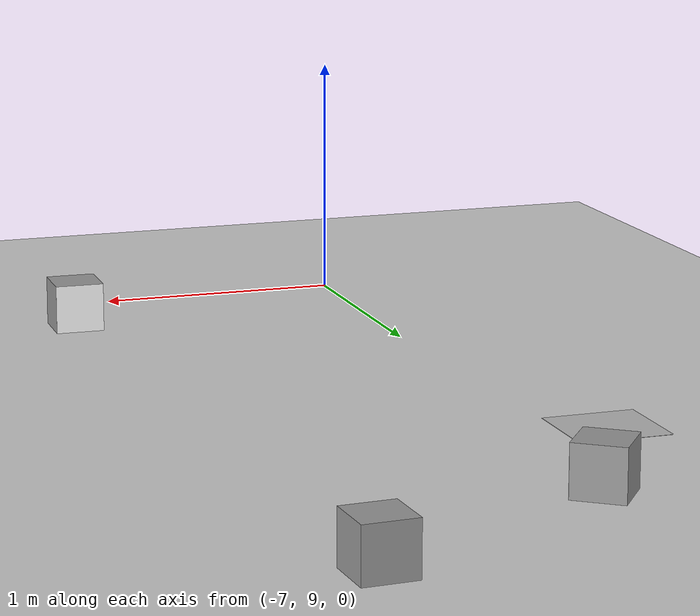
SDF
<sdf version="1.7">
 <world name="default">
  <model name="ground_plane">
   <static>1</static>
   <link name="link">
    <collision name="collision">
     <geometry><plane><normal>0 0 1</normal><size>100 100</size></plane></geometry>
     <surface>
      <contact><collide_bitmask>65535</collide_bitmask></contact>
      <friction><ode><mu>100</mu><mu2>50</mu2></ode></friction>
     </surface>
    </collision>
    <visual name="visual">
     <cast_shadows>0</cast_shadows>
     <geometry><plane><normal>0 0 1</normal><size>100 100</size></plane></geometry>
     <material>
      <script><uri>file://media/materials/scripts/gazebo.material</uri><name>Gazebo/Grey</name></script>
     </material>
    </visual>
   </link>
  </model>
  <model name="marker12_box">
   <link name="marker">
    <inertial>
     <mass>0.1</mass>
     <inertia><ixx>0</ixx><ixy>0</ixy><ixz>0</ixz><iyy>0</iyy><iyz>0</iyz><izz>0</izz></inertia>
    </inertial>
    <self_collide>1</self_collide>
    <pose>-0.76428 -0.101106 0.120004 -0.015494 1.56996 -0.015507</pose>
    <visual name="visual">
     <geometry><box><size>0.2 0.2 0.001</size></box></geometry>
     <material>
      <script>
       <uri>model://marker12/material/scripts</uri>
       <uri>model://marker12/material/textures</uri>
       <name>Aruco/marker12</name>
      </script>
      <shader type="pixel"><normal_map>__default__</normal_map></shader>
      <emissive>0 0 0 1</emissive>
      <ambient>1 1 1 1</ambient>
      <diffuse>1 1 1 1</diffuse>
      <specular>0 0 0 1</specular>
     </material>
    </visual>
    <collision name="collision">
     <geometry><box><size>0.2 0.2 0.02</size></box></geometry>
     <surface>
      <friction>
       <ode><mu>1</mu><mu2>1</mu2><fdir1>0 0 0</fdir1><slip1>0</slip1><slip2>0</slip2></ode>
       <torsional>
        <coefficient>1</coefficient>
        <patch_radius>0</patch_radius>
        <surface_radius>0</surface_radius>
        <use_patch_radius>1</use_patch_radius>
        <ode><slip>0</slip></ode>
       </torsional>
      </friction>
      <bounce><restitution_coefficient>0</restitution_coefficient><threshold>1e+06</threshold></bounce>
      <contact>
       <collide_without_contact>0</collide_without_contact>
       <collide_without_contact_bitmask>1</collide_without_contact_bitmask>
       <collide_bitmask>1</collide_bitmask>
       <ode>
        <soft_cfm>0</soft_cfm>
        <soft_erp>0.2</soft_erp>
        <kp>1e+13</kp>
        <kd>1</kd>
        <max_vel>0.01</max_vel>
        <min_depth>0</min_depth>
       </ode>
       <bullet>
        <split_impulse>1</split_impulse>
        <split_impulse_penetration_threshold>-0.01</split_impulse_penetration_threshold>
        <soft_cfm>0</soft_cfm>
        <soft_erp>0.2</soft_erp>
        <kp>1e+13</kp>
        <kd>1</kd>
       </bullet>
      </contact>
     </surface>
    </collision>
   </link>
   <link name="link_1">
    <inertial>
     <mass>1</mass>
     <inertia>
      <ixx>0.166667</ixx>
      <ixy>0</ixy>
      <ixz>0</ixz>
      <iyy>0.166667</iyy>
      <iyz>0</iyz>
      <izz>0.166667</izz>
     </inertia>
    </inertial>
    <pose>-0.86428 -0.101106 0.12 -1.3e-05 -4.2e-05 0</pose>
    <visual name="visual">
     <geometry><box><size>0.2 0.2 0.2</size></box></geometry>
     <material>
      <lighting>1</lighting>
      <script><uri>file://media/materials/scripts/gazebo.material</uri><name>Gazebo/Grey</name></script>
      <shader type="pixel"><normal_map>__default__</normal_map></shader>
      <emissive>0 0 0 1</emissive>
      <ambient>0.3 0.3 0.3 1</ambient>
      <diffuse>0.7 0.7 0.7 1</diffuse>
      <specular>0.01 0.01 0.01 1</specular>
     </material>
    </visual>
    <collision name="collision">
     <geometry><box><size>0.2 0.2 0.2</size></box></geometry>
     <surface>
      <friction>
       <ode><mu>1</mu><mu2>1</mu2><fdir1>0 0 0</fdir1><slip1>0</slip1><slip2>0</slip2></ode>
       <torsional>
        <coefficient>1</coefficient>
        <patch_radius>0</patch_radius>
        <surface_radius>0</surface_radius>
        <use_patch_radius>1</use_patch_radius>
        <ode><slip>0</slip></ode>
       </torsional>
      </friction>
      <bounce><restitution_coefficient>0</restitution_coefficient><threshold>1e+06</threshold></bounce>
      <contact>
       <collide_without_contact>0</collide_without_contact>
       <collide_without_contact_bitmask>1</collide_without_contact_bitmask>
       <collide_bitmask>1</collide_bitmask>
       <ode>
        <soft_cfm>0</soft_cfm>
        <soft_erp>0.2</soft_erp>
        <kp>1e+13</kp>
        <kd>1</kd>
        <max_vel>0.01</max_vel>
        <min_depth>0</min_depth>
       </ode>
       <bullet>
        <split_impulse>1</split_impulse>
        <split_impulse_penetration_threshold>-0.01</split_impulse_penetration_threshold>
        <soft_cfm>0</soft_cfm>
        <soft_erp>0.2</soft_erp>
        <kp>1e+13</kp>
        <kd>1</kd>
       </bullet>
      </contact>
     </surface>
    </collision>
   </link>
   <joint name="link_1_JOINT_3" type="fixed">
    <parent>link_1</parent>
    <child>marker</child>
    <physics>
     <ode><limit><cfm>0</cfm><erp>0.2</erp></limit><suspension><cfm>0</cfm><erp>0.2</erp></suspension></ode>
    </physics>
   </joint>
   <static>0</static>
   <pose>-5.78875 11.9035 -0.020006 2e-05 1.8e-05 -1.52432</pose>
  </model>
  <model name="marker14">
   <static>0</static>
   <link name="marker">
    <inertial>
     <mass>0.1</mass>
     <inertia><ixx>0</ixx><ixy>0</ixy><ixz>0</ixz><iyy>0</iyy><iyz>0</iyz><izz>0</izz></inertia>
    </inertial>
    <visual name="visual">
     <geometry><box><size>0.368647 0.350422 0.001</size></box></geometry>
     <material>
      <script>
       <uri>model://marker14/material/scripts</uri>
       <uri>model://marker14/material/textures</uri>
       <name>Aruco/marker14</name>
      </script>
     </material>
    </visual>
    <collision name="collision"><geometry><box><size>0.368647 0.350422 0.02</size></box></geometry></collision>
    <self_collide>1</self_collide>
   </link>
   <pose>-7.24908 11.5235 0.010001 -1e-06 4e-06 0</pose>
  </model>
  <model name="marker16_box">
   <link name="marker">
    <inertial>
     <mass>0.1</mass>
     <inertia><ixx>0</ixx><ixy>0</ixy><ixz>0</ixz><iyy>0</iyy><iyz>0</iyz><izz>0</izz></inertia>
    </inertial>
    <self_collide>1</self_collide>
    <pose>-0.76428 -0.101106 0.120004 -0.015494 1.56996 -0.015507</pose>
    <visual name="visual">
     <geometry><box><size>0.2 0.2 0.001</size></box></geometry>
     <material>
      <script>
       <uri>model://marker16/material/scripts</uri>
       <uri>model://marker16/material/textures</uri>
       <name>Aruco/marker16</name>
      </script>
      <shader type="pixel"><normal_map>__default__</normal_map></shader>
      <emissive>0 0 0 1</emissive>
      <ambient>1 1 1 1</ambient>
      <diffuse>1 1 1 1</diffuse>
      <specular>0 0 0 1</specular>
     </material>
    </visual>
    <collision name="collision">
     <geometry><box><size>0.2 0.2 0.02</size></box></geometry>
     <surface>
      <friction>
       <ode><mu>1</mu><mu2>1</mu2><fdir1>0 0 0</fdir1><slip1>0</slip1><slip2>0</slip2></ode>
       <torsional>
        <coefficient>1</coefficient>
        <patch_radius>0</patch_radius>
        <surface_radius>0</surface_radius>
        <use_patch_radius>1</use_patch_radius>
        <ode><slip>0</slip></ode>
       </torsional>
      </friction>
      <bounce><restitution_coefficient>0</restitution_coefficient><threshold>1e+06</threshold></bounce>
      <contact>
       <collide_without_contact>0</collide_without_contact>
       <collide_without_contact_bitmask>1</collide_without_contact_bitmask>
       <collide_bitmask>1</collide_bitmask>
       <ode>
        <soft_cfm>0</soft_cfm>
        <soft_erp>0.2</soft_erp>
        <kp>1e+13</kp>
        <kd>1</kd>
        <max_vel>0.01</max_vel>
        <min_depth>0</min_depth>
       </ode>
       <bullet>
        <split_impulse>1</split_impulse>
        <split_impulse_penetration_threshold>-0.01</split_impulse_penetration_threshold>
        <soft_cfm>0</soft_cfm>
        <soft_erp>0.2</soft_erp>
        <kp>1e+13</kp>
        <kd>1</kd>
       </bullet>
      </contact>
     </surface>
    </collision>
   </link>
   <link name="link_1">
    <inertial>
     <mass>1</mass>
     <inertia>
      <ixx>0.166667</ixx>
      <ixy>0</ixy>
      <ixz>0</ixz>
      <iyy>0.166667</iyy>
      <iyz>0</iyz>
      <izz>0.166667</izz>
     </inertia>
    </inertial>
    <pose>-0.86428 -0.101106 0.12 -1.3e-05 -4.2e-05 0</pose>
    <visual name="visual">
     <geometry><box><size>0.2 0.2 0.2</size></box></geometry>
     <material>
      <lighting>1</lighting>
      <script><uri>file://media/materials/scripts/gazebo.material</uri><name>Gazebo/Grey</name></script>
      <shader type="pixel"><normal_map>__default__</normal_map></shader>
      <emissive>0 0 0 1</emissive>
      <ambient>0.3 0.3 0.3 1</ambient>
      <diffuse>0.7 0.7 0.7 1</diffuse>
      <specular>0.01 0.01 0.01 1</specular>
     </material>
    </visual>
    <collision name="collision">
     <geometry><box><size>0.2 0.2 0.2</size></box></geometry>
     <surface>
      <friction>
       <ode><mu>1</mu><mu2>1</mu2><fdir1>0 0 0</fdir1><slip1>0</slip1><slip2>0</slip2></ode>
       <torsional>
        <coefficient>1</coefficient>
        <patch_radius>0</patch_radius>
        <surface_radius>0</surface_radius>
        <use_patch_radius>1</use_patch_radius>
        <ode><slip>0</slip></ode>
       </torsional>
      </friction>
      <bounce><restitution_coefficient>0</restitution_coefficient><threshold>1e+06</threshold></bounce>
      <contact>
       <collide_without_contact>0</collide_without_contact>
       <collide_without_contact_bitmask>1</collide_without_contact_bitmask>
       <collide_bitmask>1</collide_bitmask>
       <ode>
        <soft_cfm>0</soft_cfm>
        <soft_erp>0.2</soft_erp>
        <kp>1e+13</kp>
        <kd>1</kd>
        <max_vel>0.01</max_vel>
        <min_depth>0</min_depth>
       </ode>
       <bullet>
        <split_impulse>1</split_impulse>
        <split_impulse_penetration_threshold>-0.01</split_impulse_penetration_threshold>
        <soft_cfm>0</soft_cfm>
        <soft_erp>0.2</soft_erp>
        <kp>1e+13</kp>
        <kd>1</kd>
       </bullet>
      </contact>
     </surface>
    </collision>
   </link>
   <joint name="link_1_JOINT_3" type="fixed">
    <parent>link_1</parent>
    <child>marker</child>
    <physics>
     <ode><limit><cfm>0</cfm><erp>0.2</erp></limit><suspension><cfm>0</cfm><erp>0.2</erp></suspension></ode>
    </physics>
   </joint>
   <static>0</static>
   <pose>-5.84371 10.2589 -0.020008 1.5e-05 1.8e-05 1.54858</pose>
  </model>
  <model name="marker17_box">
   <link name="marker">
    <inertial>
     <mass>0.1</mass>
     <inertia><ixx>0</ixx><ixy>0</ixy><ixz>0</ixz><iyy>0</iyy><iyz>0</iyz><izz>0</izz></inertia>
    </inertial>
    <self_collide>1</self_collide>
    <pose>-0.76428 -0.101106 0.120004 -0.015494 1.56996 -0.015507</pose>
    <visual name="visual">
     <geometry><box><size>0.2 0.2 0.001</size></box></geometry>
     <material>
      <script>
       <uri>model://marker17/material/scripts</uri>
       <uri>model://marker17/material/textures</uri>
       <name>Aruco/marker17</name>
      </script>
      <shader type="pixel"><normal_map>__default__</normal_map></shader>
      <emissive>0 0 0 1</emissive>
      <ambient>1 1 1 1</ambient>
      <diffuse>1 1 1 1</diffuse>
      <specular>0 0 0 1</specular>
     </material>
    </visual>
    <collision name="collision">
     <geometry><box><size>0.2 0.2 0.02</size></box></geometry>
     <surface>
      <friction>
       <ode><mu>1</mu><mu2>1</mu2><fdir1>0 0 0</fdir1><slip1>0</slip1><slip2>0</slip2></ode>
       <torsional>
        <coefficient>1</coefficient>
        <patch_radius>0</patch_radius>
        <surface_radius>0</surface_radius>
        <use_patch_radius>1</use_patch_radius>
        <ode><slip>0</slip></ode>
       </torsional>
      </friction>
      <bounce><restitution_coefficient>0</restitution_coefficient><threshold>1e+06</threshold></bounce>
      <contact>
       <collide_without_contact>0</collide_without_contact>
       <collide_without_contact_bitmask>1</collide_without_contact_bitmask>
       <collide_bitmask>1</collide_bitmask>
       <ode>
        <soft_cfm>0</soft_cfm>
        <soft_erp>0.2</soft_erp>
        <kp>1e+13</kp>
        <kd>1</kd>
        <max_vel>0.01</max_vel>
        <min_depth>0</min_depth>
       </ode>
       <bullet>
        <split_impulse>1</split_impulse>
        <split_impulse_penetration_threshold>-0.01</split_impulse_penetration_threshold>
        <soft_cfm>0</soft_cfm>
        <soft_erp>0.2</soft_erp>
        <kp>1e+13</kp>
        <kd>1</kd>
       </bullet>
      </contact>
     </surface>
    </collision>
   </link>
   <link name="link_1">
    <inertial>
     <mass>1</mass>
     <inertia>
      <ixx>0.166667</ixx>
      <ixy>0</ixy>
      <ixz>0</ixz>
      <iyy>0.166667</iyy>
      <iyz>0</iyz>
      <izz>0.166667</izz>
     </inertia>
    </inertial>
    <pose>-0.86428 -0.101106 0.12 -1.3e-05 -4.2e-05 0</pose>
    <visual name="visual">
     <geometry><box><size>0.2 0.2 0.2</size></box></geometry>
     <material>
      <lighting>1</lighting>
      <script><uri>file://media/materials/scripts/gazebo.material</uri><name>Gazebo/Grey</name></script>
      <shader type="pixel"><normal_map>__default__</normal_map></shader>
      <emissive>0 0 0 1</emissive>
      <ambient>0.3 0.3 0.3 1</ambient>
      <diffuse>0.7 0.7 0.7 1</diffuse>
      <specular>0.01 0.01 0.01 1</specular>
     </material>
    </visual>
    <collision name="collision">
     <geometry><box><size>0.2 0.2 0.2</size></box></geometry>
     <surface>
      <friction>
       <ode><mu>1</mu><mu2>1</mu2><fdir1>0 0 0</fdir1><slip1>0</slip1><slip2>0</slip2></ode>
       <torsional>
        <coefficient>1</coefficient>
        <patch_radius>0</patch_radius>
        <surface_radius>0</surface_radius>
        <use_patch_radius>1</use_patch_radius>
        <ode><slip>0</slip></ode>
       </torsional>
      </friction>
      <bounce><restitution_coefficient>0</restitution_coefficient><threshold>1e+06</threshold></bounce>
      <contact>
       <collide_without_contact>0</collide_without_contact>
       <collide_without_contact_bitmask>1</collide_without_contact_bitmask>
       <collide_bitmask>1</collide_bitmask>
       <ode>
        <soft_cfm>0</soft_cfm>
        <soft_erp>0.2</soft_erp>
        <kp>1e+13</kp>
        <kd>1</kd>
        <max_vel>0.01</max_vel>
        <min_depth>0</min_depth>
       </ode>
       <bullet>
        <split_impulse>1</split_impulse>
        <split_impulse_penetration_threshold>-0.01</split_impulse_penetration_threshold>
        <soft_cfm>0</soft_cfm>
        <soft_erp>0.2</soft_erp>
        <kp>1e+13</kp>
        <kd>1</kd>
       </bullet>
      </contact>
     </surface>
    </collision>
   </link>
   <joint name="link_1_JOINT_3" type="fixed">
    <parent>link_1</parent>
    <child>marker</child>
    <physics>
     <ode><limit><cfm>0</cfm><erp>0.2</erp></limit><suspension><cfm>0</cfm><erp>0.2</erp></suspension></ode>
    </physics>
   </joint>
   <static>0</static>
   <pose>-6.1621 11.8074 -0.020008 1e-05 1.8e-05 -0.641976</pose>
  </model>
 </world>
</sdf>
